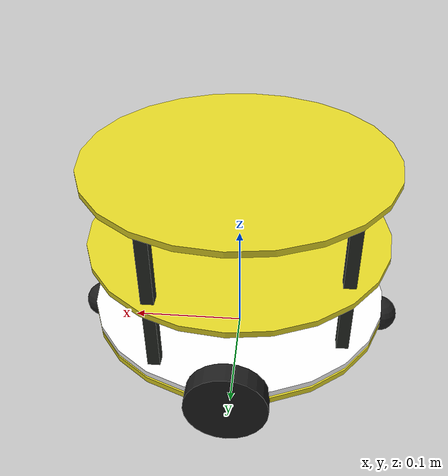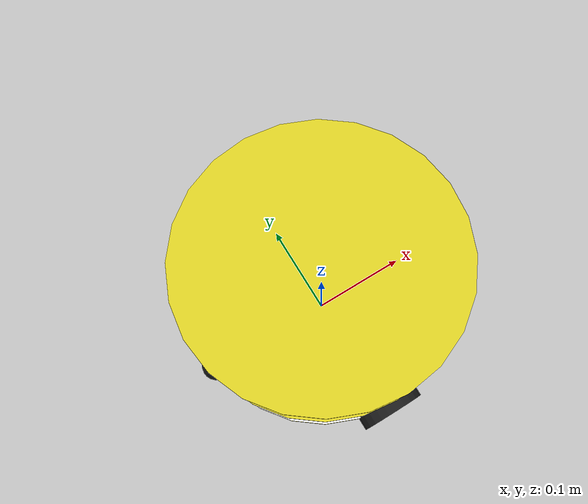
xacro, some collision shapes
<?xml version="1.0"?>
<robot name="mrobot" xmlns:xacro="http://www.ros.org/wiki/xacro">
<!-- robot_mrobot/mrobot_gazebo/urdf/dianzikeji -->

    <xacro:include filename="$(find ASLAM_gazebo_world)/urdf/test_robot.urdf.xacro" />

    <!-- 雷达hokuyo --><!-- 相机kinectv1 -->

</robot>

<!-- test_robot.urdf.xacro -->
<robot name="mrobot" xmlns:xacro="http://www.ros.org/wiki/xacro">

	<xacro:include filename="$(find ASLAM_gazebo_world)/urdf/test_robot_body.urdf.xacro" />

	<!-- Body of mrobot, with plates, standoffs -->
	<mrobot_body/>

</robot>

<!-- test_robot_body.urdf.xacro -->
<robot name="mrobot" xmlns:xacro="http://www.ros.org/wiki/xacro">

    <!-- Defining the colors used in this robot -->

    <!-- PROPERTY LIST -->
    <!--All units in m-kg-s-radians unit system -->
    <xacro:property name="M_PI" value="3.1415926535897931" />
    <xacro:property name="shell_high_correct" value="0.04" />
    <xacro:property name="caster_high_correct" value="-0.0001" />
    <!-- Main body length, width, height and mass -->
    <xacro:property name="base_mass"        value="0.5" />
    <xacro:property name="base_link_radius" value="0.13"/>   <!-- origin: 0.13   fabo:0.2-->
    <xacro:property name="base_link_length" value="0.005"/>

    <xacro:property name="motor_x" value="0"/>

    <!-- Caster radius and mass -->
    <xacro:property name="caster_radius"          value="0.016" />
    <xacro:property name="caster_mass"            value="0.01" />
    <xacro:property name="caster_joint_origin_x"  value="-0.13" />    <!-- caster position to center.  fabo:0.2     -->

    <!-- Wheel radius, height and mass -->
    <xacro:property name="wheel_radius" value="0.033" />
    <xacro:property name="wheel_height" value="0.017" />
    <xacro:property name="wheel_mass"   value="0.1" />

    <!-- plate height and mass -->
    <xacro:property name="plate_mass"   value="0.05"/>
    <xacro:property name="plate_height" value="0.07"/>
    <xacro:property name="standoff_x"   value="0.12"/>
    <xacro:property name="standoff_y"   value="0.10"/>

    <!-- Macro for inertia matrix -->
    <xacro:macro name="sphere_inertial_matrix" params="m r">
        <inertial>
            <mass value="${m}" />
            <inertia ixx="${2*m*r*r/5}" ixy="0" ixz="0"
                iyy="${2*m*r*r/5}" iyz="0"
                izz="${2*m*r*r/5}" />
        </inertial>
    </xacro:macro>

    <xacro:macro name="cylinder_inertial_matrix" params="m r h">
        <inertial>
            <mass value="${m}" />
            <inertia ixx="${m*(3*r*r+h*h)/12}" ixy = "0" ixz = "0"
                iyy="${m*(3*r*r+h*h)/12}" iyz = "0"
                izz="${m*r*r/2}" />
        </inertial>
    </xacro:macro>

    <xacro:macro name="box_inertial_matrix" params="m w h d">
        <inertial>
            <mass value="${m}" />
            <inertia ixx="${m*(h*h+d*d)/12}" ixy = "0" ixz = "0"
                iyy="${m*(w*w+d*d)/12}" iyz = "0"
                izz="${m*(w*w+h*h)/12}" />
        </inertial>
    </xacro:macro>

    <!-- Macro for wheel joint -->
    <xacro:macro name="wheel" params="lr translateY">
        <!-- lr: left, right -->
        <link name="wheel_${lr}_link">
            <visual>
                <origin xyz="0 0 0" rpy="${M_PI/2} 0  0 " />
                <geometry>
                    <cylinder length="${wheel_height}" radius="${wheel_radius}" />
                </geometry>
                <material name="Black" />
            </visual>
            <collision>
                <origin xyz="0 0 0" rpy="${M_PI/2} 0 0 " />
                <geometry>
                    <cylinder length="${wheel_height}" radius="${wheel_radius}" />
                </geometry>
            </collision>
            <cylinder_inertial_matrix  m="${wheel_mass}" r="${wheel_radius}" h="${wheel_height}" />
        </link>

        <gazebo reference="wheel_${lr}_link">
            <material>Gazebo/Black</material>
        </gazebo>

        <joint name="base_to_wheel_${lr}_joint" type="continuous">
            <parent link="base_link"/>
            <child link="wheel_${lr}_link"/>
            <origin xyz="${motor_x} ${translateY * base_link_radius} 0" rpy="0 0 0" />
            <axis xyz="0 1 0" rpy="0  0" />

        </joint>

        <!-- Transmission is important to link the joints and the controller -->
        <transmission name="wheel_${lr}_joint_trans">
            <type>transmission_interface/SimpleTransmission</type>
            <joint name="base_to_wheel_${lr}_joint">
	    	<hardwareInterface>EffortJointInterface</hardwareInterface>
    	    </joint>
            <actuator name="wheel_${lr}_joint_motor">
                <hardwareInterface>VelocityJointInterface</hardwareInterface>

                <mechanicalReduction>1</mechanicalReduction>
            </actuator>
        </transmission>
    </xacro:macro>

    <!-- Macro for caster joint -->
    <xacro:macro name="caster" params="fb translateX">
        <!-- fb: front, back -->
        <link name="${fb}_caster_link">
            <visual>
                <origin xyz="0 0 0 " rpy="0 0 0" />
                <geometry>
                    <sphere radius="${caster_radius}" />
                </geometry>
                <material name="Black" />
            </visual>
            <collision>
                <geometry>
                    <sphere radius="${caster_radius}" />
                </geometry>
                <origin xyz="0 0 0 " rpy="0 0 0" />
            </collision>
            <sphere_inertial_matrix  m="${caster_mass}" r="${caster_radius}" />
        </link>

        <gazebo reference="${fb}_caster_link">
            <material>Gazebo/Black</material>
        </gazebo>

        <joint name="base_to_${fb}_caster_joint" type="fixed">
            <parent link="base_link"/>
            <child link="${fb}_caster_link"/>
            <origin xyz="${translateX*caster_joint_origin_x} 0 ${-caster_radius + caster_high_correct}" rpy="0 0 0"/>
        </joint>
    </xacro:macro>

    <!-- Macro for plate joint -->
    <xacro:macro name="plate" params="num parent">
        <link name="plate_${num}_link">
            <cylinder_inertial_matrix  m="0.1" r="${base_link_radius}" h="${base_link_length}" />

            <visual>
                <origin xyz=" 0 0 0 " rpy="0 0 0" />
                <geometry>
                    <cylinder length="${base_link_length}" radius="${base_link_radius}"/>
                </geometry>
                <material name="yellow"/>
            </visual>

            <collision>
                <origin xyz="0.0 0.0 0.0" rpy="0 0 0" />
                <geometry>
                    <cylinder length="${base_link_length}" radius="${base_link_radius}"/>
                </geometry>
            </collision>
        </link>
        <gazebo reference="plate_${num}_link">
            <material>Gazebo/Blue</material>
        </gazebo>
        <joint name="plate_${num}_joint" type="fixed">
            <origin xyz="0 0 ${plate_height}" rpy="0 0 0" />
            <parent link="${parent}"/>
            <child link="plate_${num}_link" />
        </joint>
    </xacro:macro>

    <!-- Macro for standoff joint -->
    <xacro:macro name="mrobot_standoff_2in" params="parent number x_loc y_loc z_loc">
        <joint name="standoff_2in_${number}_joint" type="fixed">
            <origin xyz="${x_loc} ${y_loc} ${z_loc}" rpy="0 0 0" />
            <parent link="${parent}"/>
            <child link="standoff_2in_${number}_link" />
        </joint>

        <link name="standoff_2in_${number}_link">
            <inertial>
                <mass value="0.001" />
                <origin xyz="0 0 0" />
                <inertia ixx="0.0001" ixy="0.0" ixz="0.0"
          iyy="0.0001" iyz="0.0"
          izz="0.0001" />
            </inertial>

            <visual>
                <origin xyz=" 0 0 0 " rpy="0 0 0" />
                <geometry>
                    <box size="0.01 0.01 0.07" />
                </geometry>
                <material name="black">
                    <color rgba="0.16 0.17 0.15 0.9"/>
                </material>
            </visual>

            <collision>
                <origin xyz="0.0 0.0 0.0" rpy="0 0 0" />
                <geometry>
                    <box size="0.01 0.01 0.07" />
                </geometry>
            </collision>
        </link>
    </xacro:macro>

    <!-- BASE-FOOTPRINT -->
    <!-- base_footprint is a fictitious link(frame) that is on the ground right below base_link origin -->
    <xacro:macro name="mrobot_body">
        <link name="base_footprint">
            <visual>
                <origin xyz="0 0 0" rpy="0 0 0" />
                <geometry>
                    <box size="0.001 0.001 0.001" />
                </geometry>
            </visual>
        </link>

        <joint name="base_footprint_joint" type="fixed">
            <origin xyz="0 0 ${wheel_radius}" rpy="0 0 0" />
            <parent link="base_footprint"/>
            <child link="base_link" />
        </joint>

        <!-- BASE-LINK -->
        <!--Actual body/chassis of the robot-->
        <link name="base_link">
            <cylinder_inertial_matrix  m="${base_mass}" r="${base_link_radius}" h="${base_link_length}" />
            <visual>
                <origin xyz=" 0 0 0" rpy="0 0 0" />
                <geometry>
                    <cylinder length="${base_link_length}" radius="${base_link_radius}"/>
                </geometry>
                <material name="yellow" />
            </visual>
            <collision>
                <origin xyz="0 0 0" rpy="0 0 0" />
                <geometry>
                    <cylinder length="${base_link_length}" radius="${base_link_radius}"/>
                </geometry>
            </collision>
        </link>

        <gazebo reference="base_link">
            <material>Gazebo/Blue</material>
        </gazebo>

        <!-- shell -->
        <joint name="shell_footprint_joint" type="fixed">
            <origin xyz="0 0 ${shell_high_correct}" rpy="0 0 ${M_PI}" />
            <parent link="base_footprint"/>
            <child link="shell_link" />
        </joint>

        <link
            name="shell_link">
            <inertial>
            <origin
                xyz="-0.00294082483465983 0.000146714888625652 0.442160868151096"
                rpy="0 0 0" />
            <mass
                value="1e-5" />
            <inertia
                ixx="0.172898160476508"
                ixy="2.31745522812561E-06"
                ixz="-0.00159810687296311"
                iyy="0.148915768801367"
                iyz="-4.49683641611027E-05"
                izz="0.146063097245756" />
            </inertial>
            <visual>
            <origin
                xyz="0 0 0"
                rpy="0 0 0" />
            <geometry>
                <mesh filename="package://ASLAM_gazebo_world/urdf/shell_link.STL" />
            </geometry>
            <material
                name="">
                <color
                rgba="1 1 1 1" />
            </material>
            </visual>
            <collision>
            <origin
                xyz="0 0 0"
                rpy="0 0 0" />
            <geometry>
                <cylinder length="${base_link_length}" radius="${base_link_radius}"/>
            </geometry>
            </collision>
        </link>
        <gazebo reference="shell_link">
            <material>Gazebo/Grey</material>
        </gazebo>

        <!-- Wheel Definitions -->
        <wheel lr="right"  translateY="-1" />
        <wheel lr="left"  translateY="1" />

        <!-- Casters Definitions -->
        <caster fb="front"  translateX="-1" />
        <caster fb="back"  translateX="1" />

        <!-- plates and standoff Definitions -->
        <mrobot_standoff_2in parent="base_link" number="1" x_loc="-${standoff_x/2 + 0.03}" y_loc="-${standoff_y - 0.03}" z_loc="${plate_height/2}"/>
        <mrobot_standoff_2in parent="base_link" number="2" x_loc="-${standoff_x/2 + 0.03}" y_loc="${standoff_y - 0.03}" z_loc="${plate_height/2}"/>
        <mrobot_standoff_2in parent="base_link" number="3" x_loc="${standoff_x/2}" y_loc="-${standoff_y}" z_loc="${plate_height/2}"/>
        <mrobot_standoff_2in parent="base_link" number="4" x_loc="${standoff_x/2}" y_loc="${standoff_y}" z_loc="${plate_height/2}"/>
        <mrobot_standoff_2in parent="standoff_2in_1_link" number="5" x_loc="0" y_loc="0" z_loc="${plate_height}"/>
        <mrobot_standoff_2in parent="standoff_2in_2_link" number="6" x_loc="0" y_loc="0" z_loc="${plate_height}"/>
        <mrobot_standoff_2in parent="standoff_2in_3_link" number="7" x_loc="0" y_loc="0" z_loc="${plate_height}"/>
        <mrobot_standoff_2in parent="standoff_2in_4_link" number="8" x_loc="0" y_loc="0" z_loc="${plate_height}"/>

        <!-- plate Definitions -->
        <plate num="1"  parent="base_link" />
        <plate num="2"  parent="plate_1_link" />

        <!-- controller -->
        <gazebo>
            <plugin name="differential_drive_controller" filename="libgazebo_ros_diff_drive.so">
                <rosDebugLevel>Debug</rosDebugLevel>
                <publishWheelTF>true</publishWheelTF>
                <robotNamespace>/</robotNamespace>
                <publishTf>1</publishTf>
                <publishWheelJointState>true</publishWheelJointState>
                <alwaysOn>true</alwaysOn>
                <updateRate>100.0</updateRate>
                <legacyMode>true</legacyMode>
                <leftJoint>base_to_wheel_left_joint</leftJoint>
                <rightJoint>base_to_wheel_right_joint</rightJoint>
                <wheelSeparation>${base_link_radius*2}</wheelSeparation>
                <wheelDiameter>${2*wheel_radius}</wheelDiameter>
                <broadcastTF>1</broadcastTF>
                <wheelTorque>30</wheelTorque>
                <wheelAcceleration>1.8</wheelAcceleration>
                <commandTopic>cmd_vel</commandTopic>
                <odometryFrame>odom</odometryFrame>
                <odometryTopic>odom</odometryTopic>
                <robotBaseFrame>base_footprint</robotBaseFrame>
		<legacyModeNS>true</legacyModeNS>
            </plugin>
        </gazebo>

    </xacro:macro>
</robot>
